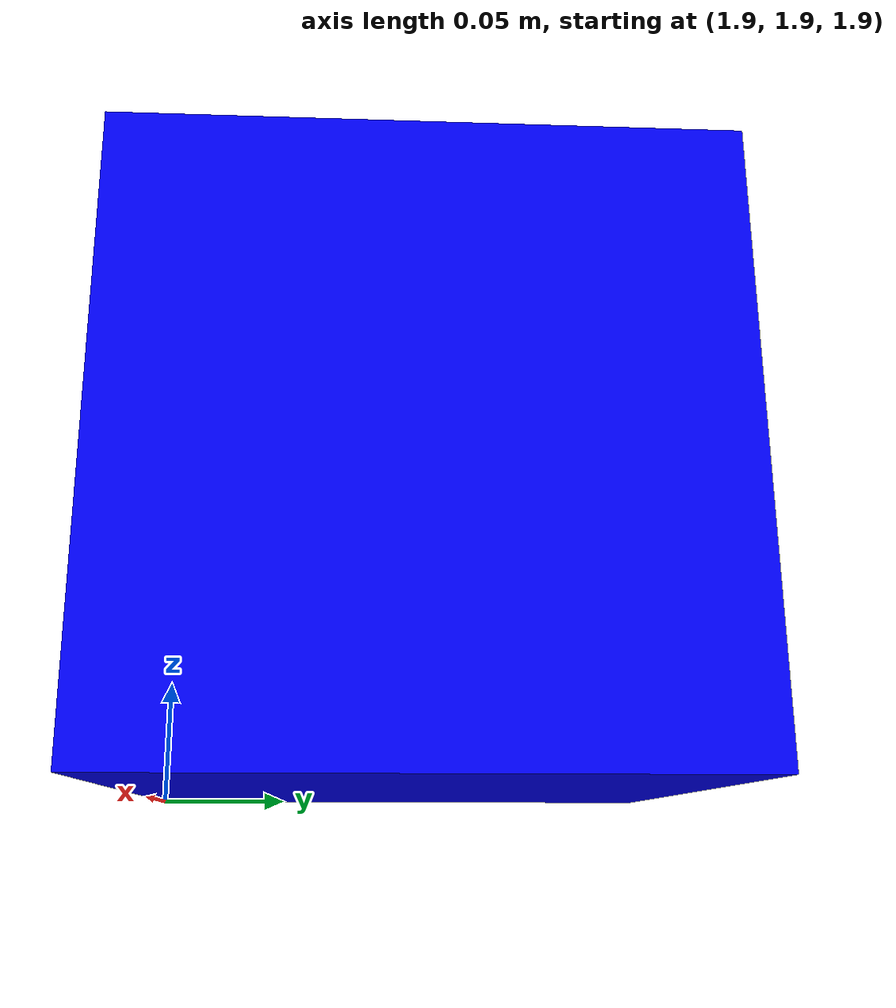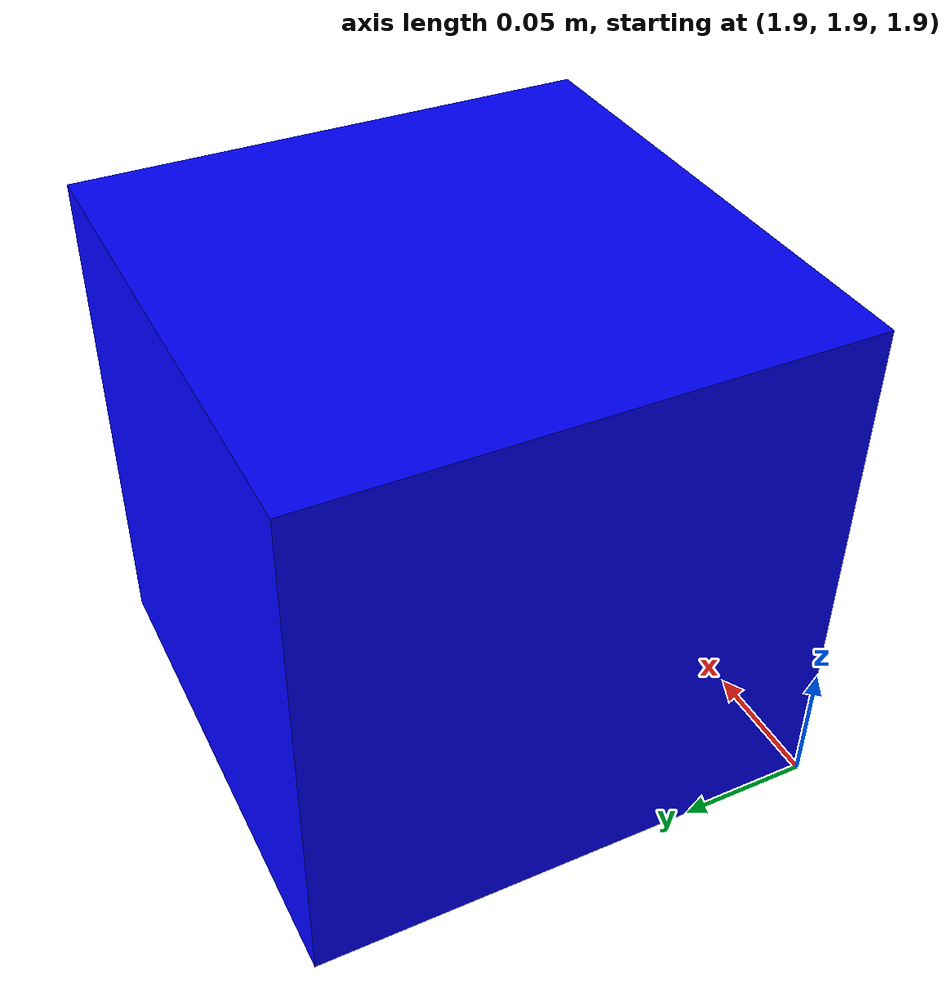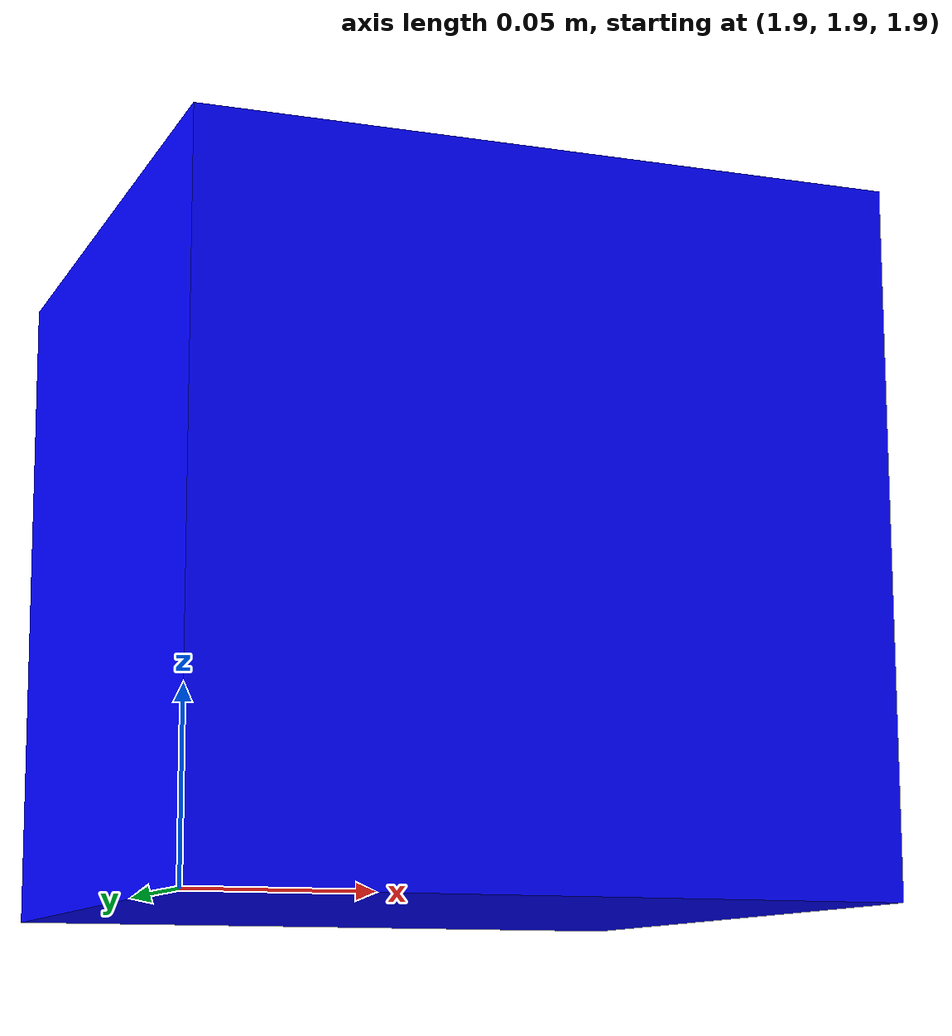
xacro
<?xml version="1.0"?>
<robot xmlns:xacro="http://www.ros.org/wiki/xacro" name="reference_marker">

  <xacro:include filename="components/ugv_component.xacro" />

  <link name="ref_root"/>

  <xacro:ugv_component
    prefix="obstacle_"
    x="2.0"
    y="2.0"
    z="2.0"
  />

  <joint name="ref_joint" type="fixed">
    <parent link="ref_root"/>
    <child link="obstacle_base_link"/>
    <origin xyz="0 0 0" rpy="0 0 0"/>
  </joint>

  <gazebo>
    <static>true</static>
  </gazebo>

</robot>

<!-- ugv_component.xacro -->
<robot xmlns:xacro="http://www.ros.org/wiki/xacro">
  <xacro:macro name="ugv_component" params="prefix x y z">

    <link name="${prefix}base_link">
      <inertial>
        <mass value="2.0"/>
        <inertia ixx="0.05" ixy="0.0" ixz="0.0" iyy="0.05" iyz="0.0" izz="0.08"/>
      </inertial>

      <visual>
        <origin xyz="${x} ${y} ${z}" rpy="0 0 0"/>
        <geometry><box size="0.2 0.2 0.2"/></geometry>
        <material name="blue"><color rgba="0 0 1 1"/></material>
      </visual>
    </link>

  </xacro:macro>
</robot>
